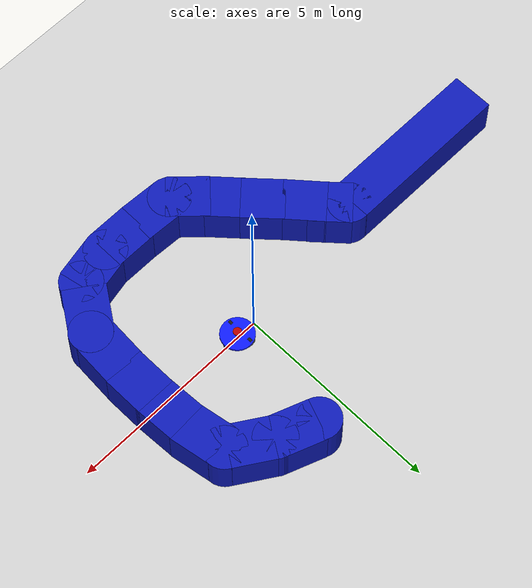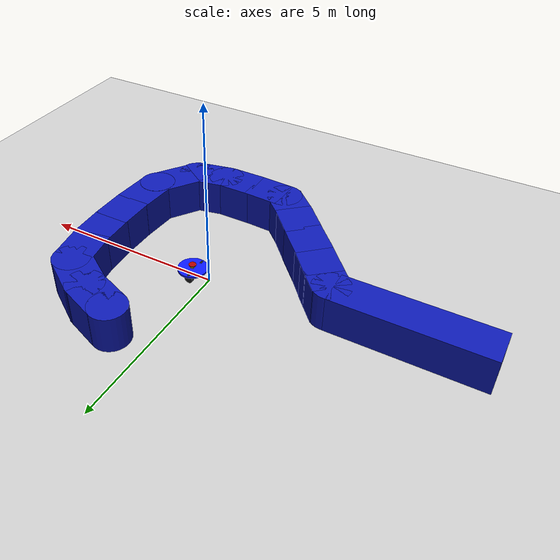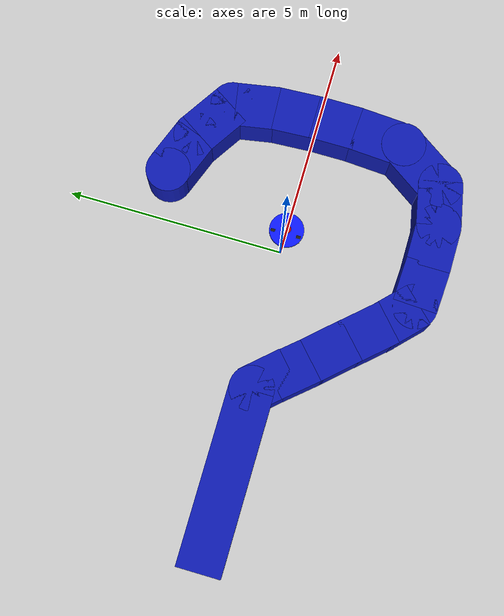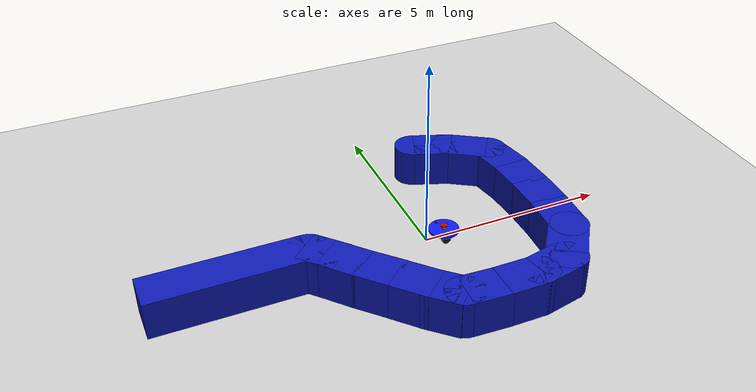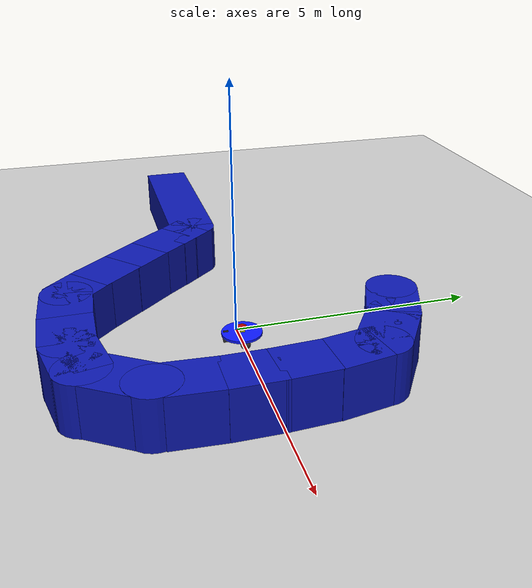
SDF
<?xml version="1.0" ?>
<sdf version="1.8">
    <world name="sensor_world">
        <physics name="1ms" type="ignored">
            <max_step_size>0.001</max_step_size>
            <real_time_factor>1.0</real_time_factor>
        </physics>
        <plugin
            filename="ignition-gazebo-physics-system"
            name="ignition::gazebo::systems::Physics">
        </plugin>
        <plugin
            filename="ignition-gazebo-user-commands-system"
            name="ignition::gazebo::systems::UserCommands">
        </plugin>
        <plugin
            filename="ignition-gazebo-scene-broadcaster-system"
            name="ignition::gazebo::systems::SceneBroadcaster">
        </plugin>
        <plugin filename="ignition-gazebo-imu-system"
                name="ignition::gazebo::systems::Imu">
        </plugin>
        <plugin filename="ignition-gazebo-sensors-system"
                name="ignition::gazebo::systems::Sensors">
            <render_engine>ogre2</render_engine>
        </plugin>
        <plugin filename="ignition-gazebo-contact-system"
                name="ignition::gazebo::systems::Contact">
        </plugin>
        <gui fullscreen="0">
          <!-- 3D scene -->
          <plugin filename="MinimalScene" name="3D View">
          <gz-gui>
            <title>3D View</title>
            <property type="bool" key="showTitleBar">false</property>
            <property type="string" key="state">docked</property>
          </gz-gui>

          <engine>ogre2</engine>
          <scene>scene</scene>
          <ambient_light>0.4 0.4 0.4</ambient_light>
          <background_color>0.8 0.8 0.8</background_color>
          <camera_pose>-6 0 6 0 0.5 0</camera_pose>
          <camera_clip>
            <near>0.25</near>
            <far>25000</far>
          </camera_clip>
          </plugin>

          <!-- Plugins that add functionality to the scene -->
          <plugin filename="EntityContextMenuPlugin" name="Entity context menu">
          <gz-gui>
            <property key="state" type="string">floating</property>
            <property key="width" type="double">5</property>
            <property key="height" type="double">5</property>
            <property key="showTitleBar" type="bool">false</property>
          </gz-gui>
          </plugin>
          <plugin filename="GzSceneManager" name="Scene Manager">
          <gz-gui>
            <property key="resizable" type="bool">false</property>
            <property key="width" type="double">5</property>
            <property key="height" type="double">5</property>
            <property key="state" type="string">floating</property>
            <property key="showTitleBar" type="bool">false</property>
          </gz-gui>
          </plugin>
          <plugin filename="InteractiveViewControl" name="Interactive view control">
          <gz-gui>
            <property key="resizable" type="bool">false</property>
            <property key="width" type="double">5</property>
            <property key="height" type="double">5</property>
            <property key="state" type="string">floating</property>
            <property key="showTitleBar" type="bool">false</property>
          </gz-gui>
          </plugin>
          <plugin filename="CameraTracking" name="Camera Tracking">
          <gz-gui>
            <property key="resizable" type="bool">false</property>
            <property key="width" type="double">5</property>
            <property key="height" type="double">5</property>
            <property key="state" type="string">floating</property>
            <property key="showTitleBar" type="bool">false</property>
          </gz-gui>
          </plugin>
          <plugin filename="MarkerManager" name="Marker manager">
          <gz-gui>
            <property key="resizable" type="bool">false</property>
            <property key="width" type="double">5</property>
            <property key="height" type="double">5</property>
            <property key="state" type="string">floating</property>
            <property key="showTitleBar" type="bool">false</property>
          </gz-gui>
          </plugin>
          <plugin filename="SelectEntities" name="Select Entities">
          <gz-gui>
            <anchors target="Select entities">
              <line own="right" target="right"/>
              <line own="top" target="top"/>
            </anchors>
            <property key="resizable" type="bool">false</property>
            <property key="width" type="double">5</property>
            <property key="height" type="double">5</property>
            <property key="state" type="string">floating</property>
            <property key="showTitleBar" type="bool">false</property>
          </gz-gui>
          </plugin>
          <plugin filename="VisualizationCapabilities" name="Visualization Capabilities">
          <gz-gui>
            <property key="resizable" type="bool">false</property>
            <property key="width" type="double">5</property>
            <property key="height" type="double">5</property>
            <property key="state" type="string">floating</property>
            <property key="showTitleBar" type="bool">false</property>
          </gz-gui>
          </plugin>

          <plugin filename="Spawn" name="Spawn Entities">
          <gz-gui>
            <anchors target="Select entities">
              <line own="right" target="right"/>
              <line own="top" target="top"/>
            </anchors>
            <property key="resizable" type="bool">false</property>
            <property key="width" type="double">5</property>
            <property key="height" type="double">5</property>
            <property key="state" type="string">floating</property>
            <property key="showTitleBar" type="bool">false</property>
          </gz-gui>
          </plugin>

          <!-- World control -->
          <plugin filename="WorldControl" name="World control">
          <gz-gui>
            <title>World control</title>
            <property type="bool" key="showTitleBar">false</property>
            <property type="bool" key="resizable">false</property>
            <property type="double" key="height">72</property>
            <property type="double" key="width">121</property>
            <property type="double" key="z">1</property>

            <property type="string" key="state">floating</property>
            <anchors target="3D View">
              <line own="left" target="left"/>
              <line own="bottom" target="bottom"/>
            </anchors>
          </gz-gui>

          <play_pause>true</play_pause>
          <step>true</step>
          <start_paused>true</start_paused>
          <use_event>true</use_event>

          </plugin>

          <!-- World statistics -->
          <plugin filename="WorldStats" name="World stats">
          <gz-gui>
            <title>World stats</title>
            <property type="bool" key="showTitleBar">false</property>
            <property type="bool" key="resizable">false</property>
            <property type="double" key="height">110</property>
            <property type="double" key="width">290</property>
            <property type="double" key="z">1</property>

            <property type="string" key="state">floating</property>
            <anchors target="3D View">
              <line own="right" target="right"/>
              <line own="bottom" target="bottom"/>
            </anchors>
          </gz-gui>

          <sim_time>true</sim_time>
          <real_time>true</real_time>
          <real_time_factor>true</real_time_factor>
          <iterations>true</iterations>
          </plugin>

          <!-- Insert simple shapes -->
          <plugin filename="Shapes" name="Shapes">
          <gz-gui>
            <property key="resizable" type="bool">false</property>
            <property key="x" type="double">0</property>
            <property key="y" type="double">0</property>
            <property key="width" type="double">250</property>
            <property key="height" type="double">50</property>
            <property key="state" type="string">floating</property>
            <property key="showTitleBar" type="bool">false</property>
            <property key="cardBackground" type="string">#666666</property>
          </gz-gui>
          </plugin>

          <!-- Insert lights -->
          <plugin filename="Lights" name="Lights">
          <gz-gui>
            <property key="resizable" type="bool">false</property>
            <property key="x" type="double">250</property>
            <property key="y" type="double">0</property>
            <property key="width" type="double">150</property>
            <property key="height" type="double">50</property>
            <property key="state" type="string">floating</property>
            <property key="showTitleBar" type="bool">false</property>
            <property key="cardBackground" type="string">#666666</property>
          </gz-gui>
          </plugin>

          <!-- Translate / rotate -->
          <plugin filename="TransformControl" name="Transform control">
          <gz-gui>
            <property key="resizable" type="bool">false</property>
            <property key="x" type="double">0</property>
            <property key="y" type="double">50</property>
            <property key="width" type="double">250</property>
            <property key="height" type="double">50</property>
            <property key="state" type="string">floating</property>
            <property key="showTitleBar" type="bool">false</property>
            <property key="cardBackground" type="string">#777777</property>
          </gz-gui>
          </plugin>

          <!-- Screenshot -->
          <plugin filename="Screenshot" name="Screenshot">
          <gz-gui>
            <property key="resizable" type="bool">false</property>
            <property key="x" type="double">250</property>
            <property key="y" type="double">50</property>
            <property key="width" type="double">50</property>
            <property key="height" type="double">50</property>
            <property key="state" type="string">floating</property>
            <property key="showTitleBar" type="bool">false</property>
            <property key="cardBackground" type="string">#777777</property>
          </gz-gui>
          </plugin>

          <!-- Video recorder -->
          <plugin filename="VideoRecorder" name="VideoRecorder">
          <gz-gui>
            <property key="resizable" type="bool">false</property>
            <property key="x" type="double">300</property>
            <property key="y" type="double">50</property>
            <property key="width" type="double">50</property>
            <property key="height" type="double">50</property>
            <property key="state" type="string">floating</property>
            <property key="showTitleBar" type="bool">false</property>
            <property key="cardBackground" type="string">#777777</property>
          </gz-gui>

          <record_video>
            <use_sim_time>true</use_sim_time>
            <lockstep>false</lockstep>
            <bitrate>4000000</bitrate>
          </record_video>
          </plugin>

          <!-- Inspector -->
          <plugin filename="ComponentInspector" name="Component inspector">
          <gz-gui>
            <property type="string" key="state">docked_collapsed</property>
          </gz-gui>
          </plugin>

          <!-- Entity tree -->
          <plugin filename="EntityTree" name="Entity tree">
          <gz-gui>
            <property type="string" key="state">docked_collapsed</property>
          </gz-gui>
          </plugin>

          <!-- View angle -->
          <plugin filename="ViewAngle" name="View angle">
          <gz-gui>
            <property type="string" key="state">docked_collapsed</property>
          </gz-gui>
          </plugin>

            <!-- KeyPublisher plugin-->
            <plugin filename="KeyPublisher" name="Key Publisher"/>

        </gui>

        <light type="directional" name="sun">
            <cast_shadows>true</cast_shadows>
            <pose>0 0 10 0 0 0</pose>
            <diffuse>0.8 0.8 0.8 1</diffuse>
            <specular>0.2 0.2 0.2 1</specular>
            <attenuation>
                <range>1000</range>
                <constant>0.9</constant>
                <linear>0.01</linear>
                <quadratic>0.001</quadratic>
            </attenuation>
            <direction>-0.5 0.1 -0.9</direction>
        </light>

        <model name="ground_plane">
            <static>true</static>
            <link name="link">
                <collision name="collision">
                <geometry>
                    <plane>
                    <normal>0 0 1</normal>
                    </plane>
                </geometry>
                </collision>
                <visual name="visual">
                <geometry>
                    <plane>
                    <normal>0 0 1</normal>
                    <size>200 200</size>
                    </plane>
                </geometry>
                <material>
                    <ambient>0.8 0.8 0.8 1</ambient>
                    <diffuse>0.8 0.8 0.8 1</diffuse>
                    <specular>0.8 0.8 0.8 1</specular>
                </material>
                </visual>
            </link>
        </model>

        <model name='vehicle_blue' canonical_link='chassis'>
            <!--plugin filename="libRandomPosePlugin.so" name="random_pose_plugin"/-->
            <pose relative_to='world'>0 0 0 0 0 0</pose>   <!--the pose is relative to the world by default-->

            <frame name="lidar_frame" attached_to='lidar_housing'>
                <pose>0 0 0.2 0 0 0</pose>
            </frame>

            <link name='lidar_housing'>
                <pose relative_to='chassis'>0.0 0 0.08 0 0 0</pose> <!-- Adjust this pose to position the housing on top of the robot -->
                <inertial>
                    <mass>0.1</mass>
                    <inertia>
                      <ixx>0.000166667</ixx>
                      <iyy>0.000166667</iyy>
                      <izz>0.000166667</izz>
                    </inertia>
                </inertial>
                <visual name='visual'>
                    <geometry>
                        <box>
                            <size>0.1 0.1 0.1</size> <!-- Adjust size as needed -->
                        </box>
                    </geometry>
                    <material>
                        <ambient>0.7 0.7 0.1 1</ambient>
                        <diffuse>0.7 0.7 0.1 1</diffuse>
                        <specular>0.7 0.7 0.1 1</specular>
                    </material>
                </visual>
                <collision name='collision'>
                    <geometry>
                        <box>
                            <size>0.1 0.1 0.1</size>
                        </box>
                    </geometry>
                </collision>
            </link>

            <link name='lidar_housing2'>
                <pose relative_to='chassis'>0.0 0 0.125 0 0 0</pose> <!-- Adjust this pose to position the housing on top of the robot -->
                <inertial>
                    <mass>0.1</mass>
                    <inertia>
                      <ixx>0.000166667</ixx>
                      <iyy>0.000166667</iyy>
                      <izz>0.000166667</izz>
                    </inertia>
                </inertial>
                <visual name='visual'>
                    <geometry>
                        <cylinder>
                            <radius>0.1</radius> <!-- Radius of the cylinder -->
                            <length>0.02</length> <!-- Height of the cylinder -->
                        </cylinder>
                    </geometry>
                    <material>
                        <ambient>0.7 0.0 0.0 1</ambient>
                        <diffuse>0.7 0.0 0.0 1</diffuse>
                        <specular>0.7 0.0 0.0 1</specular>
                    </material>
                </visual>
                <collision name='collision'>
                    <geometry>
                        <cylinder>
                            <radius>0.05</radius> <!-- Radius of the cylinder -->
                            <length>0.02</length> <!-- Height of the cylinder -->
                        </cylinder>
                    </geometry>
                </collision>
            </link>

            <joint name='lidar_housing_joint' type='fixed'>
                <parent>chassis</parent>
                <child>lidar_housing</child>
            </joint>
            <joint name='lidar_housing_joint2' type='fixed'>
                <parent>chassis</parent>
                <child>lidar_housing2</child>
            </joint>

            <link name='chassis'>
                <pose relative_to='__model__'>0.5 0 0.2 0 0 0</pose>
                <inertial> <!--inertial properties of the link mass, inertia matix-->
                    <mass>1.14395</mass>
                    <inertia>
                      <ixx>0.126164</ixx>
                      <ixy>0</ixy>
                      <ixz>0</ixz>
                      <iyy>0.416519</iyy>
                      <iyz>0</iyz>
                      <izz>0.481014</izz>
                    </inertia>
                </inertial>
                <visual name='visual'>
                    <geometry>
                        <cylinder>
                            <radius>0.40</radius> <!-- Radius of the cylinder -->
                            <length>0.05</length> <!-- Height of the cylinder -->
                        </cylinder>
                    </geometry>
                    <!--let's add color to our link-->
                    <material>
                        <ambient>0.05 0.1 1.0 1</ambient>
                        <diffuse>0.05 0.1 1.0 1</diffuse>
                        <specular>0.05 0.1 1.0 1</specular>
                    </material>
                </visual>
                <collision name='collision'> <!--todo: describe why we need the collision-->
                    <geometry>
                        <cylinder>
                            <radius>0.40</radius> <!-- Radius of the cylinder -->
                            <length>0.05</length> <!-- Height of the cylinder -->
                        </cylinder>
                    </geometry>
                </collision>
                <sensor name='gpu_lidar' type='gpu_lidar'>"
                    <pose relative_to='lidar_frame'>0 0 0 0 0 0</pose>
                    <topic>lidar</topic>
                    <update_rate>5</update_rate>
                    <ray>
                    <scan>
                        <horizontal>
                        <samples>720</samples>
                        <resolution>1</resolution>
                        <min_angle>-3.1415</min_angle>
                        <max_angle>3.1415</max_angle>
                        </horizontal>
                        <vertical>
                        <samples>1</samples>
                        <resolution>0.01</resolution>
                        <min_angle>0</min_angle>
                        <max_angle>0</max_angle>
                        </vertical>
                    </scan>
                    <range>
                        <min>0.08</min>
                        <max>10.0</max>
                        <resolution>0.01</resolution>
                    </range>
                    </ray>
                    <alwaysOn>1</alwaysOn>
                    <visualize>true</visualize>
                </sensor>
            </link>distance

            <!--let's build the left wheel-->
            <link name='left_wheel'>
                <pose relative_to="chassis">-0.085 0.3 -0.085 -1.5707 0 0</pose> <!--angles are in radian-->
                <inertial>
                  <mass>2</mass>
                  <inertia>
                    <ixx>0.145833</ixx>
                    <ixy>0</ixy>
                    <ixz>0</ixz>
                    <iyy>0.145833</iyy>
                    <iyz>0</iyz>
                    <izz>0.125</izz>
                  </inertia>
                </inertial>
                <visual name='visual'>
                    <geometry>
                        <cylinder>
                            <radius>0.115</radius>
                            <length>0.1</length>
                        </cylinder>
                    </geometry>
                    <material>
                        <ambient>0.1 0.1 0.1 1</ambient>
                        <diffuse>0.1 0.1 0.1 1</diffuse>
                        <specular>0.1 0.1 0.1 1</specular>
                    </material>
                </visual>
                <collision name='collision'>
                    <geometry>
                        <cylinder>
                            <radius>0.115</radius>
                            <length>0.1</length>
                        </cylinder>
                    </geometry>
                </collision>
            </link>

            <!--copy and paste for right wheel but change position-->
            <link name='right_wheel'>
                <pose relative_to="chassis">-0.085 -0.3 -0.085 -1.5707 0 0</pose> <!--angles are in radian-->
                <inertial>
                  <mass>2</mass>
                  <inertia>
                    <ixx>0.145833</ixx>
                    <ixy>0</ixy>
                    <ixz>0</ixz>
                    <iyy>0.145833</iyy>
                    <iyz>0</iyz>
                    <izz>0.125</izz>
                  </inertia>
                </inertial>
                <visual name='visual'>
                    <geometry>
                        <cylinder>
                            <radius>0.115</radius>
                            <length>0.1</length>
                        </cylinder>
                    </geometry>
                    <material>
                        <ambient>0.1 0.1 0.1 1</ambient>
                        <diffuse>0.1 0.1 0.1 1</diffuse>
                        <specular>0.1 0.1 0.1 1</specular>
                    </material>
                </visual>
                <collision name='collision'>
                    <geometry>
                        <cylinder>
                            <radius>0.115</radius>
                            <length>0.1</length>
                        </cylinder>
                    </geometry>
                </collision>
            </link>

            <frame name="caster_frame" attached_to='chassis'>
                <pose>0.3 0 -0.095 0 0 0</pose>
            </frame>

            <!--caster wheel-->
            <link name='caster'>
                <pose relative_to='caster_frame'/>
                <inertial>
                  <mass>10</mass>
                  <inertia>
                    <ixx>0.1</ixx>
                    <ixy>0</ixy>
                    <ixz>0</ixz>
                    <iyy>0.1</iyy>
                    <iyz>0</iyz>
                    <izz>0.1</izz>
                  </inertia>
                </inertial>
                <visual name='visual'>
                    <geometry>
                        <sphere>
                            <radius>0.1</radius>
                        </sphere>
                    </geometry>
                    <material>
                        <ambient>0.2 0.2 0.2 1</ambient>
                        <diffuse>0.2 0.2 0.2 1</diffuse>
                        <specular>0.2 0.2 0.2 1</specular>
                    </material>
                </visual>
                <collision name='collision'>
                    <geometry>
                        <sphere>
                            <radius>0.1</radius>
                        </sphere>
                    </geometry>
                </collision>
            </link>

            <!--connecting these links together using joints-->
            <joint name='left_wheel_joint' type='revolute'> <!--continous joint is not supported yet-->
                <pose relative_to='left_wheel'/>
                <parent>chassis</parent>
                <child>left_wheel</child>
                <axis>
                    <xyz expressed_in='__model__'>0 1 0</xyz> <!--can be descired to any frame or even arbitrary frames-->
                    <limit>
                        <lower>-1.79769e+308</lower>    <!--negative infinity-->
                        <upper>1.79769e+308</upper>     <!--positive infinity-->
                    </limit>
                </axis>
            </joint>

            <joint name='right_wheel_joint' type='revolute'>
                <pose relative_to='right_wheel'/>
                <parent>chassis</parent>
                <child>right_wheel</child>
                <axis>
                    <xyz expressed_in='__model__'>0 1 0</xyz>
                    <limit>
                        <lower>-1.79769e+308</lower>    <!--negative infinity-->
                        <upper>1.79769e+308</upper>     <!--positive infinity-->
                    </limit>
                </axis>
            </joint>

            <!--different type of joints ball joint--> <!--defult value is the child-->
            <joint name='caster_wheel' type='ball'>
                <parent>chassis</parent>
                <child>caster</child>
            </joint>

            <!--diff drive plugin-->
            <plugin
                filename="ignition-gazebo-diff-drive-system"
                name="ignition::gazebo::systems::DiffDrive">
                <left_joint>left_wheel_joint</left_joint>
                <right_joint>right_wheel_joint</right_joint>
                <wheel_separation>1.2</wheel_separation>
                <wheel_radius>0.4</wheel_radius>
                <odom_publish_frequency>1</odom_publish_frequency>
                <topic>cmd_vel</topic>
            </plugin>
        </model>

    <model name='box'>
      <static>true</static>
      <pose>3.00706 -0.415974 0.5 0 -0 0</pose>
      <link name='box_link'>
        <inertial>
          <mass>1.14395</mass>
          <inertia>
            <ixx>9.5329200000000007</ixx>
            <ixy>0</ixy>
            <ixz>0</ixz>
            <iyy>0.023831999999999999</iyy>
            <iyz>0</iyz>
            <izz>9.5567499999999992</izz>
          </inertia>
          <pose>0 0 0 0 -0 0</pose>
        </inertial>
        <collision name='box_collision'>
          <geometry>
            <box>
              <size>1 1 1</size>
            </box>
          </geometry>
          <surface>
            <friction>
              <ode/>
            </friction>
            <bounce/>
            <contact/>
          </surface>
        </collision>
        <visual name='box_visual'>
          <geometry>
            <box>
              <size>1 1 1</size>
            </box>
          </geometry>
          <material>
            <ambient>0.05 0.1 0.7 1</ambient>
            <diffuse>0.05 0.1 0.7 1</diffuse>
            <specular>0.05 0.1 0.7 1</specular>
          </material>
        </visual>
        <pose>0 0 0 0 -0 0</pose>
        <enable_wind>false</enable_wind>
      </link>
      <static>true</static>
      <self_collide>false</self_collide>
    </model>
    <model name='cylinder'>
      <static>true</static>
      <pose>0.917952 2.89454 0.5 0 -0 0</pose>
      <link name='cylinder_link'>
        <inertial>
          <mass>1.14395</mass>
          <inertia>
            <ixx>9.5329200000000007</ixx>
            <ixy>0</ixy>
            <ixz>0</ixz>
            <iyy>0.023831999999999999</iyy>
            <iyz>0</iyz>
            <izz>9.5567499999999992</izz>
          </inertia>
          <pose>0 0 0 0 -0 0</pose>
        </inertial>
        <collision name='cylinder_collision'>
          <geometry>
            <cylinder>
              <radius>0.5</radius>
              <length>1</length>
            </cylinder>
          </geometry>
          <surface>
            <friction>
              <ode/>
            </friction>
            <bounce/>
            <contact/>
          </surface>
        </collision>
        <visual name='cylinder_visual'>
          <geometry>
            <cylinder>
              <radius>0.5</radius>
              <length>1</length>
            </cylinder>
          </geometry>
          <material>
            <ambient>0.05 0.1 0.7 1</ambient>
            <diffuse>0.05 0.1 0.7 1</diffuse>
            <specular>0.05 0.1 0.7 1</specular>
          </material>
        </visual>
        <pose>0 0 0 0 -0 0</pose>
        <enable_wind>false</enable_wind>
      </link>
      <static>true</static>
      <self_collide>false</self_collide>
    </model>
    <model name='box_0'>
      <static>true</static>
      <pose>1.42262 2.70479 0.5 0 0 -0.362197</pose>
      <link name='box_link'>
        <inertial>
          <mass>1.14395</mass>
          <inertia>
            <ixx>9.5329200000000007</ixx>
            <ixy>0</ixy>
            <ixz>0</ixz>
            <iyy>0.023831999999999999</iyy>
            <iyz>0</iyz>
            <izz>9.5567499999999992</izz>
          </inertia>
          <pose>0 0 0 0 -0 0</pose>
        </inertial>
        <collision name='box_collision'>
          <geometry>
            <box>
              <size>1 1 1</size>
            </box>
          </geometry>
          <surface>
            <friction>
              <ode/>
            </friction>
            <bounce/>
            <contact/>
          </surface>
        </collision>
        <visual name='box_visual'>
          <geometry>
            <box>
              <size>1 1 1</size>
            </box>
          </geometry>
          <material>
            <ambient>0.05 0.1 0.7 1</ambient>
            <diffuse>0.05 0.1 0.7 1</diffuse>
            <specular>0.05 0.1 0.7 1</specular>
          </material>
        </visual>
        <pose>0 0 0 0 -0 0</pose>
        <enable_wind>false</enable_wind>
      </link>
      <static>true</static>
      <self_collide>false</self_collide>
    </model>
    <model name='box_1'>
      <static>true</static>
      <pose>2.98358 0.472353 0.5 0 -0 0.052375</pose>
      <link name='box_link'>
        <inertial>
          <mass>1.14395</mass>
          <inertia>
            <ixx>9.5329200000000007</ixx>
            <ixy>0</ixy>
            <ixz>0</ixz>
            <iyy>0.023831999999999999</iyy>
            <iyz>0</iyz>
            <izz>9.5567499999999992</izz>
          </inertia>
          <pose>0 0 0 0 -0 0</pose>
        </inertial>
        <collision name='box_collision'>
          <geometry>
            <box>
              <size>1 1 1</size>
            </box>
          </geometry>
          <surface>
            <friction>
              <ode/>
            </friction>
            <bounce/>
            <contact/>
          </surface>
        </collision>
        <visual name='box_visual'>
          <geometry>
            <box>
              <size>1 1 1</size>
            </box>
          </geometry>
          <material>
            <ambient>0.05 0.1 0.7 1</ambient>
            <diffuse>0.05 0.1 0.7 1</diffuse>
            <specular>0.05 0.1 0.7 1</specular>
          </material>
        </visual>
        <pose>0 0 0 0 -0 0</pose>
        <enable_wind>false</enable_wind>
      </link>
      <static>true</static>
      <self_collide>false</self_collide>
    </model>
    <model name='box_2'>
      <static>true</static>
      <pose>2.88655 1.3779 0.5 0 -0 0.173488</pose>
      <link name='box_link'>
        <inertial>
          <mass>1.14395</mass>
          <inertia>
            <ixx>9.5329200000000007</ixx>
            <ixy>0</ixy>
            <ixz>0</ixz>
            <iyy>0.023831999999999999</iyy>
            <iyz>0</iyz>
            <izz>9.5567499999999992</izz>
          </inertia>
          <pose>0 0 0 0 -0 0</pose>
        </inertial>
        <collision name='box_collision'>
          <geometry>
            <box>
              <size>1 1 1</size>
            </box>
          </geometry>
          <surface>
            <friction>
              <ode/>
            </friction>
            <bounce/>
            <contact/>
          </surface>
        </collision>
        <visual name='box_visual'>
          <geometry>
            <box>
              <size>1 1 1</size>
            </box>
          </geometry>
          <material>
            <ambient>0.05 0.1 0.7 1</ambient>
            <diffuse>0.05 0.1 0.7 1</diffuse>
            <specular>0.05 0.1 0.7 1</specular>
          </material>
        </visual>
        <pose>0 0 0 0 -0 0</pose>
        <enable_wind>false</enable_wind>
      </link>
      <static>true</static>
      <self_collide>false</self_collide>
    </model>
    <model name='box_3'>
      <static>true</static>
      <pose>2.59632 -2.48343 0.5 0 0 -0.59622</pose>
      <link name='box_link'>
        <inertial>
          <inertia>
            <ixx>0.16666</ixx>
            <ixy>0</ixy>
            <ixz>0</ixz>
            <iyy>0.16666</iyy>
            <iyz>0</iyz>
            <izz>0.16666</izz>
          </inertia>
          <mass>1</mass>
          <pose>0 0 0 0 -0 0</pose>
        </inertial>
        <collision name='box_collision'>
          <geometry>
            <box>
              <size>1 1 1</size>
            </box>
          </geometry>
          <surface>
            <friction>
              <ode/>
            </friction>
            <bounce/>
            <contact/>
          </surface>
        </collision>
        <visual name='box_visual'>
          <geometry>
            <box>
              <size>1 1 1</size>
            </box>
          </geometry>
          <material>
            <ambient>0.05 0.1 0.7 1</ambient>
            <diffuse>0.05 0.1 0.7 1</diffuse>
            <specular>0.05 0.1 0.7 1</specular>
          </material>
        </visual>
        <pose>0 0 0 0 -0 0</pose>
        <enable_wind>false</enable_wind>
      </link>
      <static>true</static>
      <self_collide>false</self_collide>
    </model>
    <model name='box_4'>
      <static>true</static>
      <pose>2.32704 2.23885 0.5 0 0 -0.573992</pose>
      <link name='box_link'>
        <inertial>
          <inertia>
            <ixx>0.16666</ixx>
            <ixy>0</ixy>
            <ixz>0</ixz>
            <iyy>0.16666</iyy>
            <iyz>0</iyz>
            <izz>0.16666</izz>
          </inertia>
          <mass>1</mass>
          <pose>0 0 0 0 -0 0</pose>
        </inertial>
        <collision name='box_collision'>
          <geometry>
            <box>
              <size>1 1 1</size>
            </box>
          </geometry>
          <surface>
            <friction>
              <ode/>
            </friction>
            <bounce/>
            <contact/>
          </surface>
        </collision>
        <visual name='box_visual'>
          <geometry>
            <box>
              <size>1 1 1</size>
            </box>
          </geometry>
          <material>
            <ambient>0.05 0.1 0.7 1</ambient>
            <diffuse>0.05 0.1 0.7 1</diffuse>
            <specular>0.05 0.1 0.7 1</specular>
          </material>
        </visual>
        <pose>0 0 0 0 -0 0</pose>
        <enable_wind>false</enable_wind>
      </link>
      <static>true</static>
      <self_collide>false</self_collide>
    </model>
    <model name='box_5'>
      <static>true</static>
      <pose>0.886297 -3.22561 0.5 0 -0 0</pose>
      <link name='box_link'>
        <inertial>
          <inertia>
            <ixx>0.16666</ixx>
            <ixy>0</ixy>
            <ixz>0</ixz>
            <iyy>0.16666</iyy>
            <iyz>0</iyz>
            <izz>0.16666</izz>
          </inertia>
          <mass>1</mass>
          <pose>0 0 0 0 -0 0</pose>
        </inertial>
        <collision name='box_collision'>
          <geometry>
            <box>
              <size>1 1 1</size>
            </box>
          </geometry>
          <surface>
            <friction>
              <ode/>
            </friction>
            <bounce/>
            <contact/>
          </surface>
        </collision>
        <visual name='box_visual'>
          <geometry>
            <box>
              <size>1 1 1</size>
            </box>
          </geometry>
          <material>
            <ambient>0.05 0.1 0.7 1</ambient>
            <diffuse>0.05 0.1 0.7 1</diffuse>
            <specular>0.05 0.1 0.7 1</specular>
          </material>
        </visual>
        <pose>0 0 0 0 -0 0</pose>
        <enable_wind>false</enable_wind>
      </link>
      <static>true</static>
      <self_collide>false</self_collide>
    </model>
    <model name='box_6'>
      <static>true</static>
      <pose>-0.03955 -3.20397 0.5 0 0 -0.051617</pose>
      <link name='box_link'>
        <inertial>
          <inertia>
            <ixx>0.16666</ixx>
            <ixy>0</ixy>
            <ixz>0</ixz>
            <iyy>0.16666</iyy>
            <iyz>0</iyz>
            <izz>0.16666</izz>
          </inertia>
          <mass>1</mass>
          <pose>0 0 0 0 -0 0</pose>
        </inertial>
        <collision name='box_collision'>
          <geometry>
            <box>
              <size>1 1 1</size>
            </box>
          </geometry>
          <surface>
            <friction>
              <ode/>
            </friction>
            <bounce/>
            <contact/>
          </surface>
        </collision>
        <visual name='box_visual'>
          <geometry>
            <box>
              <size>1 1 1</size>
            </box>
          </geometry>
          <material>
            <ambient>0.05 0.1 0.7 1</ambient>
            <diffuse>0.05 0.1 0.7 1</diffuse>
            <specular>0.05 0.1 0.7 1</specular>
          </material>
        </visual>
        <pose>0 0 0 0 -0 0</pose>
        <enable_wind>false</enable_wind>
      </link>
      <static>true</static>
      <self_collide>false</self_collide>
    </model>
    <model name='box_7'>
      <static>true</static>
      <pose>-0.840741 -2.90144 0.5 0 0 -0.768425</pose>
      <link name='box_link'>
        <inertial>
          <inertia>
            <ixx>0.16666</ixx>
            <ixy>0</ixy>
            <ixz>0</ixz>
            <iyy>0.16666</iyy>
            <iyz>0</iyz>
            <izz>0.16666</izz>
          </inertia>
          <mass>1</mass>
          <pose>0 0 0 0 -0 0</pose>
        </inertial>
        <collision name='box_collision'>
          <geometry>
            <box>
              <size>1 1 1</size>
            </box>
          </geometry>
          <surface>
            <friction>
              <ode/>
            </friction>
            <bounce/>
            <contact/>
          </surface>
        </collision>
        <visual name='box_visual'>
          <geometry>
            <box>
              <size>1 1 1</size>
            </box>
          </geometry>
          <material>
            <ambient>0.05 0.1 0.7 1</ambient>
            <diffuse>0.05 0.1 0.7 1</diffuse>
            <specular>0.05 0.1 0.7 1</specular>
          </material>
        </visual>
        <pose>0 0 0 0 -0 0</pose>
        <enable_wind>false</enable_wind>
      </link>
      <static>true</static>
      <self_collide>false</self_collide>
    </model>
    <model name='box_8'>
      <static>true</static>
      <pose>-1.36809 -2.35617 0.5 0 0 -0.833722</pose>
      <link name='box_link'>
        <inertial>
          <inertia>
            <ixx>0.16666</ixx>
            <ixy>0</ixy>
            <ixz>0</ixz>
            <iyy>0.16666</iyy>
            <iyz>0</iyz>
            <izz>0.16666</izz>
          </inertia>
          <mass>1</mass>
          <pose>0 0 0 0 -0 0</pose>
        </inertial>
        <collision name='box_collision'>
          <geometry>
            <box>
              <size>1 1 1</size>
            </box>
          </geometry>
          <surface>
            <friction>
              <ode/>
            </friction>
            <bounce/>
            <contact/>
          </surface>
        </collision>
        <visual name='box_visual'>
          <geometry>
            <box>
              <size>1 1 1</size>
            </box>
          </geometry>
          <material>
            <ambient>0.05 0.1 0.7 1</ambient>
            <diffuse>0.05 0.1 0.7 1</diffuse>
            <specular>0.05 0.1 0.7 1</specular>
          </material>
        </visual>
        <pose>0 0 0 0 -0 0</pose>
        <enable_wind>false</enable_wind>
      </link>
      <static>true</static>
      <self_collide>false</self_collide>
    </model>
    <model name='box_9'>
      <static>true</static>
      <pose>-1.97826 -1.6838 0.5 0 0 -0.823602</pose>
      <link name='box_link'>
        <inertial>
          <inertia>
            <ixx>0.16666</ixx>
            <ixy>0</ixy>
            <ixz>0</ixz>
            <iyy>0.16666</iyy>
            <iyz>0</iyz>
            <izz>0.16666</izz>
          </inertia>
          <mass>1</mass>
          <pose>0 0 0 0 -0 0</pose>
        </inertial>
        <collision name='box_collision'>
          <geometry>
            <box>
              <size>1 1 1</size>
            </box>
          </geometry>
          <surface>
            <friction>
              <ode/>
            </friction>
            <bounce/>
            <contact/>
          </surface>
        </collision>
        <visual name='box_visual'>
          <geometry>
            <box>
              <size>1 1 1</size>
            </box>
          </geometry>
          <material>
            <ambient>0.05 0.1 0.7 1</ambient>
            <diffuse>0.05 0.1 0.7 1</diffuse>
            <specular>0.05 0.1 0.7 1</specular>
          </material>
        </visual>
        <pose>0 0 0 0 -0 0</pose>
        <enable_wind>false</enable_wind>
      </link>
      <static>true</static>
      <self_collide>false</self_collide>
    </model>
    <model name='box_12'>
      <static>true</static>
      <pose>2.97268 -1.37485 0.5 0 0 -0.064551</pose>
      <link name='box_link'>
        <inertial>
          <inertia>
            <ixx>0.16666</ixx>
            <ixy>0</ixy>
            <ixz>0</ixz>
            <iyy>0.16666</iyy>
            <iyz>0</iyz>
            <izz>0.16666</izz>
          </inertia>
          <mass>1</mass>
          <pose>0 0 0 0 -0 0</pose>
        </inertial>
        <collision name='box_collision'>
          <geometry>
            <box>
              <size>1 1 1</size>
            </box>
          </geometry>
          <surface>
            <friction>
              <ode/>
            </friction>
            <bounce/>
            <contact/>
          </surface>
        </collision>
        <visual name='box_visual'>
          <geometry>
            <box>
              <size>1 1 1</size>
            </box>
          </geometry>
          <material>
            <ambient>0.05 0.1 0.7 1</ambient>
            <diffuse>0.05 0.1 0.7 1</diffuse>
            <specular>0.05 0.1 0.7 1</specular>
          </material>
        </visual>
        <pose>0 0 0 0 -0 0</pose>
        <enable_wind>false</enable_wind>
      </link>
      <static>true</static>
      <self_collide>false</self_collide>
    </model>
    <model name='cylinder_0'>
      <pose>2.7943 1.93962 0.5 0 -0 0</pose>
      <link name='cylinder_link'>
        <inertial>
          <inertia>
            <ixx>0.14580000000000001</ixx>
            <ixy>0</ixy>
            <ixz>0</ixz>
            <iyy>0.14580000000000001</iyy>
            <iyz>0</iyz>
            <izz>0.125</izz>
          </inertia>
          <mass>1</mass>
          <pose>0 0 0 0 -0 0</pose>
        </inertial>
        <collision name='cylinder_collision'>
          <geometry>
            <cylinder>
              <radius>0.5</radius>
              <length>1</length>
            </cylinder>
          </geometry>
          <surface>
            <friction>
              <ode/>
            </friction>
            <bounce/>
            <contact/>
          </surface>
        </collision>
        <visual name='cylinder_visual'>
          <geometry>
            <cylinder>
              <radius>0.5</radius>
              <length>1</length>
            </cylinder>
          </geometry>
          <material>
            <ambient>0.05 0.1 0.7 1</ambient>
            <diffuse>0.05 0.1 0.7 1</diffuse>
            <specular>0.05 0.1 0.7 1</specular>
          </material>
        </visual>
        <pose>0 0 0 0 -0 0</pose>
        <enable_wind>false</enable_wind>
      </link>
      <static>true</static>
      <self_collide>false</self_collide>
    </model>
    <model name='box_13'>
      <pose>1.86329 -3.11556 0.5 0 -0 0.207572</pose>
      <link name='box_link'>
        <inertial>
          <inertia>
            <ixx>0.16666</ixx>
            <ixy>0</ixy>
            <ixz>0</ixz>
            <iyy>0.16666</iyy>
            <iyz>0</iyz>
            <izz>0.16666</izz>
          </inertia>
          <mass>1</mass>
          <pose>0 0 0 0 -0 0</pose>
        </inertial>
        <collision name='box_collision'>
          <geometry>
            <box>
              <size>1 1 1</size>
            </box>
          </geometry>
          <surface>
            <friction>
              <ode/>
            </friction>
            <bounce/>
            <contact/>
          </surface>
        </collision>
        <visual name='box_visual'>
          <geometry>
            <box>
              <size>1 1 1</size>
            </box>
          </geometry>
          <material>
            <ambient>0.05 0.1 0.7 1</ambient>
            <diffuse>0.05 0.1 0.7 1</diffuse>
            <specular>0.05 0.1 0.7 1</specular>
          </material>
        </visual>
        <pose>0 0 0 0 -0 0</pose>
        <enable_wind>false</enable_wind>
      </link>
      <static>true</static>
      <self_collide>false</self_collide>
    </model>
    <model name='box_14'>
      <pose>-2.5956 -0.99465 0.5 0 0 -0.856465</pose>
      <link name='box_link'>
        <inertial>
          <inertia>
            <ixx>0.16666</ixx>
            <ixy>0</ixy>
            <ixz>0</ixz>
            <iyy>0.16666</iyy>
            <iyz>0</iyz>
            <izz>0.16666</izz>
          </inertia>
          <mass>1</mass>
          <pose>0 0 0 0 -0 0</pose>
        </inertial>
        <collision name='box_collision'>
          <geometry>
            <box>
              <size>1 1 1</size>
            </box>
          </geometry>
          <surface>
            <friction>
              <ode/>
            </friction>
            <bounce/>
            <contact/>
          </surface>
        </collision>
        <visual name='box_visual'>
          <geometry>
            <box>
              <size>1 1 1</size>
            </box>
          </geometry>
          <material>
            <ambient>0.05 0.1 0.7 1</ambient>
            <diffuse>0.05 0.1 0.7 1</diffuse>
            <specular>0.05 0.1 0.7 1</specular>
          </material>
        </visual>
        <pose>0 0 0 0 -0 0</pose>
        <enable_wind>false</enable_wind>
      </link>
      <static>true</static>
      <self_collide>false</self_collide>
    </model>
    <model name='box_15'>
      <pose>-5.29632 -0.260784 0.5 0 -0 0</pose>
      <link name='box_link'>
        <inertial>
          <inertia>
            <ixx>0.16666</ixx>
            <ixy>0</ixy>
            <ixz>0</ixz>
            <iyy>0.16666</iyy>
            <iyz>0</iyz>
            <izz>0.16666</izz>
          </inertia>
          <mass>1</mass>
          <pose>0 0 0 0 -0 0</pose>
        </inertial>
        <collision name='box_collision'>
          <geometry>
            <box>
              <size>4 1 1</size>
            </box>
          </geometry>
          <surface>
            <friction>
              <ode/>
            </friction>
            <bounce/>
            <contact/>
          </surface>
        </collision>
        <visual name='box_visual'>
          <geometry>
            <box>
              <size>4 1 1</size>
            </box>
          </geometry>
          <material>
            <ambient>0.05 0.1 0.7 1</ambient>
            <diffuse>0.05 0.1 0.7 1</diffuse>
            <specular>0.05 0.1 0.7 1</specular>
          </material>
        </visual>
        <pose>0 0 0 0 -0 0</pose>
        <enable_wind>false</enable_wind>
      </link>
      <static>true</static>
      <self_collide>false</self_collide>
    </model>

    <model name='box_18'>
      <pose>-2.97161 -0.564539 0.5 0 0 -0.834334</pose>
      <link name='box_link'>
        <inertial>
          <inertia>
            <ixx>0.16666</ixx>
            <ixy>0</ixy>
            <ixz>0</ixz>
            <iyy>0.16666</iyy>
            <iyz>0</iyz>
            <izz>0.16666</izz>
          </inertia>
          <mass>1</mass>
          <pose>0 0 0 0 -0 0</pose>
        </inertial>
        <collision name='box_collision'>
          <geometry>
            <box>
              <size>1 1 1</size>
            </box>
          </geometry>
          <surface>
            <friction>
              <ode/>
            </friction>
            <bounce/>
            <contact/>
          </surface>
        </collision>
        <visual name='box_visual'>
          <geometry>
            <box>
              <size>1 1 1</size>
            </box>
          </geometry>
          <material>
            <ambient>0.05 0.1 0.7 1</ambient>
            <diffuse>0.05 0.1 0.7 1</diffuse>
            <specular>0.05 0.1 0.7 1</specular>
          </material>
        </visual>
        <pose>0 0 0 0 -0 0</pose>
        <enable_wind>false</enable_wind>
      </link>
      <static>true</static>
      <self_collide>false</self_collide>
    </model>
    <model name='cylinder_1'>
      <pose>-3.25082 -0.259145 0.5 0 -0 0</pose>
      <link name='cylinder_link'>
        <inertial>
          <inertia>
            <ixx>0.14580000000000001</ixx>
            <ixy>0</ixy>
            <ixz>0</ixz>
            <iyy>0.14580000000000001</iyy>
            <iyz>0</iyz>
            <izz>0.125</izz>
          </inertia>
          <mass>1</mass>
          <pose>0 0 0 0 -0 0</pose>
        </inertial>
        <collision name='cylinder_collision'>
          <geometry>
            <cylinder>
              <radius>0.5</radius>
              <length>1</length>
            </cylinder>
          </geometry>
          <surface>
            <friction>
              <ode/>
            </friction>
            <bounce/>
            <contact/>
          </surface>
        </collision>
        <visual name='cylinder_visual'>
          <geometry>
            <cylinder>
              <radius>0.5</radius>
              <length>1</length>
            </cylinder>
          </geometry>
          <material>
            <ambient>0.05 0.1 0.7 1</ambient>
            <diffuse>0.05 0.1 0.7 1</diffuse>
            <specular>0.05 0.1 0.7 1</specular>
          </material>
        </visual>
        <pose>0 0 0 0 -0 0</pose>
        <enable_wind>false</enable_wind>
      </link>
      <static>true</static>
      <self_collide>false</self_collide>
    </model>
    <model name='cylinder_2'>
      <pose>-0.543804 -3.17855 0.5 0 -0 0</pose>
      <link name='cylinder_link'>
        <inertial>
          <inertia>
            <ixx>0.14580000000000001</ixx>
            <ixy>0</ixy>
            <ixz>0</ixz>
            <iyy>0.14580000000000001</iyy>
            <iyz>0</iyz>
            <izz>0.125</izz>
          </inertia>
          <mass>1</mass>
          <pose>0 0 0 0 -0 0</pose>
        </inertial>
        <collision name='cylinder_collision'>
          <geometry>
            <cylinder>
              <radius>0.5</radius>
              <length>1</length>
            </cylinder>
          </geometry>
          <surface>
            <friction>
              <ode/>
            </friction>
            <bounce/>
            <contact/>
          </surface>
        </collision>
        <visual name='cylinder_visual'>
          <geometry>
            <cylinder>
              <radius>0.5</radius>
              <length>1</length>
            </cylinder>
          </geometry>
          <material>
            <ambient>0.05 0.1 0.7 1</ambient>
            <diffuse>0.05 0.1 0.7 1</diffuse>
            <specular>0.05 0.1 0.7 1</specular>
          </material>
        </visual>
        <pose>0 0 0 0 -0 0</pose>
        <enable_wind>false</enable_wind>
      </link>
      <static>true</static>
      <self_collide>false</self_collide>
    </model>
    <model name='cylinder_3'>
      <pose>2.94161 -2.00056 0.50376 0 -0 0</pose>
      <link name='cylinder_link'>
        <inertial>
          <inertia>
            <ixx>0.14580000000000001</ixx>
            <ixy>0</ixy>
            <ixz>0</ixz>
            <iyy>0.14580000000000001</iyy>
            <iyz>0</iyz>
            <izz>0.125</izz>
          </inertia>
          <mass>1</mass>
          <pose>0 0 0 0 -0 0</pose>
        </inertial>
        <collision name='cylinder_collision'>
          <geometry>
            <cylinder>
              <radius>0.5</radius>
              <length>1</length>
            </cylinder>
          </geometry>
          <surface>
            <friction>
              <ode/>
            </friction>
            <bounce/>
            <contact/>
          </surface>
        </collision>
        <visual name='cylinder_visual'>
          <geometry>
            <cylinder>
              <radius>0.5</radius>
              <length>1</length>
            </cylinder>
          </geometry>
          <material>
            <ambient>0.05 0.1 0.7 1</ambient>
            <diffuse>0.05 0.1 0.7 1</diffuse>
            <specular>0.05 0.1 0.7 1</specular>
          </material>
        </visual>
        <pose>0 0 0 0 -0 0</pose>
        <enable_wind>false</enable_wind>
      </link>
      <static>true</static>
      <self_collide>false</self_collide>
    </model>
    <model name='cylinder_4'>
      <pose>2.26174 -3.03293 0.5 0 -0 0</pose>
      <link name='cylinder_link'>
        <inertial>
          <inertia>
            <ixx>0.14580000000000001</ixx>
            <ixy>0</ixy>
            <ixz>0</ixz>
            <iyy>0.14580000000000001</iyy>
            <iyz>0</iyz>
            <izz>0.125</izz>
          </inertia>
          <mass>1</mass>
          <pose>0 0 0 0 -0 0</pose>
        </inertial>
        <collision name='cylinder_collision'>
          <geometry>
            <cylinder>
              <radius>0.5</radius>
              <length>1</length>
            </cylinder>
          </geometry>
          <surface>
            <friction>
              <ode/>
            </friction>
            <bounce/>
            <contact/>
          </surface>
        </collision>
        <visual name='cylinder_visual'>
          <geometry>
            <cylinder>
              <radius>0.5</radius>
              <length>1</length>
            </cylinder>
          </geometry>
          <material>
            <ambient>0.05 0.1 0.7 1</ambient>
            <diffuse>0.05 0.1 0.7 1</diffuse>
            <specular>0.05 0.1 0.7 1</specular>
          </material>
        </visual>
        <pose>0 0 0 0 -0 0</pose>
        <enable_wind>false</enable_wind>
      </link>
      <static>true</static>
      <self_collide>false</self_collide>
    </model>
    <model name='cylinder_5'>
      <pose>1.35803 -3.22609 0.5 0 -0 0</pose>
      <link name='cylinder_link'>
        <inertial>
          <inertia>
            <ixx>0.14580000000000001</ixx>
            <ixy>0</ixy>
            <ixz>0</ixz>
            <iyy>0.14580000000000001</iyy>
            <iyz>0</iyz>
            <izz>0.125</izz>
          </inertia>
          <mass>1</mass>
          <pose>0 0 0 0 -0 0</pose>
        </inertial>
        <collision name='cylinder_collision'>
          <geometry>
            <cylinder>
              <radius>0.5</radius>
              <length>1</length>
            </cylinder>
          </geometry>
          <surface>
            <friction>
              <ode/>
            </friction>
            <bounce/>
            <contact/>
          </surface>
        </collision>
        <visual name='cylinder_visual'>
          <geometry>
            <cylinder>
              <radius>0.5</radius>
              <length>1</length>
            </cylinder>
          </geometry>
          <material>
            <ambient>0.05 0.1 0.7 1</ambient>
            <diffuse>0.05 0.1 0.7 1</diffuse>
            <specular>0.05 0.1 0.7 1</specular>
          </material>
        </visual>
        <pose>0 0 0 0 -0 0</pose>
        <enable_wind>false</enable_wind>
      </link>
      <static>true</static>
      <self_collide>false</self_collide>
    </model>
    <model name='cylinder_6'>
      <pose>1.87694 2.53628 0.5 0 -0 0</pose>
      <link name='cylinder_link'>
        <inertial>
          <inertia>
            <ixx>0.14580000000000001</ixx>
            <ixy>0</ixy>
            <ixz>0</ixz>
            <iyy>0.14580000000000001</iyy>
            <iyz>0</iyz>
            <izz>0.125</izz>
          </inertia>
          <mass>1</mass>
          <pose>0 0 0 0 -0 0</pose>
        </inertial>
        <collision name='cylinder_collision'>
          <geometry>
            <cylinder>
              <radius>0.5</radius>
              <length>1</length>
            </cylinder>
          </geometry>
          <surface>
            <friction>
              <ode/>
            </friction>
            <bounce/>
            <contact/>
          </surface>
        </collision>
        <visual name='cylinder_visual'>
          <geometry>
            <cylinder>
              <radius>0.5</radius>
              <length>1</length>
            </cylinder>
          </geometry>
          <material>
            <ambient>0.05 0.1 0.7 1</ambient>
            <diffuse>0.05 0.1 0.7 1</diffuse>
            <specular>0.05 0.1 0.7 1</specular>
          </material>
        </visual>
        <pose>0 0 0 0 -0 0</pose>
        <enable_wind>false</enable_wind>
      </link>
      <static>true</static>
      <self_collide>false</self_collide>
    </model>

        <!-- Moving Forward-->
        <plugin filename="ignition-gazebo-triggered-publisher-system"
                name="ignition::gazebo::systems::TriggeredPublisher">
            <input type="ignition.msgs.Int32" topic="/keyboard/keypress">
                <match field="data">16777235</match>
            </input>
            <output type="ignition.msgs.Twist" topic="/cmd_vel">
                linear: {x: 1.5}, angular: {z: 0.0}
            </output>
        </plugin>

        <!-- Moving Backward-->
        <plugin filename="ignition-gazebo-triggered-publisher-system"
                name="ignition::gazebo::systems::TriggeredPublisher">
            <input type="ignition.msgs.Int32" topic="/keyboard/keypress">
                <match field="data">16777237</match>
            </input>
            <output type="ignition.msgs.Twist" topic="/cmd_vel">
                linear: {x: -1.5}, angular: {z: 0.0}
            </output>
        </plugin>

        <!-- Rotating right-->
        <plugin filename="ignition-gazebo-triggered-publisher-system"
                name="ignition::gazebo::systems::TriggeredPublisher">
            <input type="ignition.msgs.Int32" topic="/keyboard/keypress">
                <match field="data">16777236</match>
            </input>
            <output type="ignition.msgs.Twist" topic="/cmd_vel">
                linear: {x: 0.0}, angular: {z: -0.5}
            </output>
        </plugin>

        <!--Rotating left-->
        <plugin filename="ignition-gazebo-triggered-publisher-system"
                name="ignition::gazebo::systems::TriggeredPublisher">
            <input type="ignition.msgs.Int32" topic="/keyboard/keypress">
                <match field="data">16777234</match>
            </input>
            <output type="ignition.msgs.Twist" topic="/cmd_vel">
                linear: {x: 0.0}, angular: {z: 0.5}
            </output>
        </plugin>

        <!--stop when hit the wall-->
        <plugin filename="ignition-gazebo-triggered-publisher-system"
                name="ignition::gazebo::systems::TriggeredPublisher">
            <input type="ignition.msgs.Boolean" topic="/wall/touched">
                <match>data: true</match>
            </input>
            <output type="ignition.msgs.Twist" topic="/cmd_vel">
                linear: {x: 0.0}, angular: {z: 0.0}
            </output>
        </plugin>
    </world>
</sdf>
